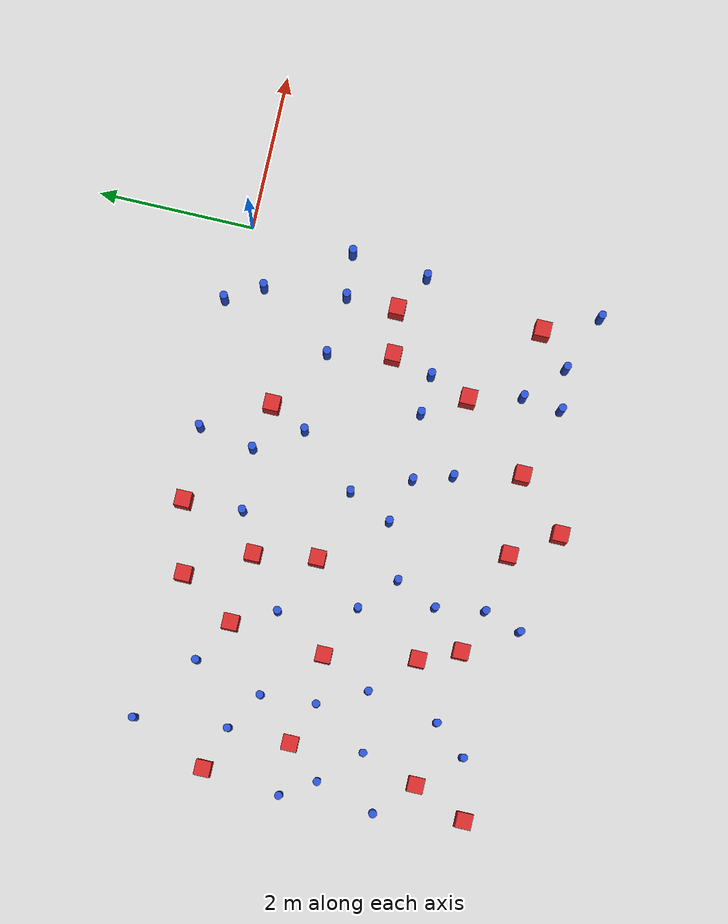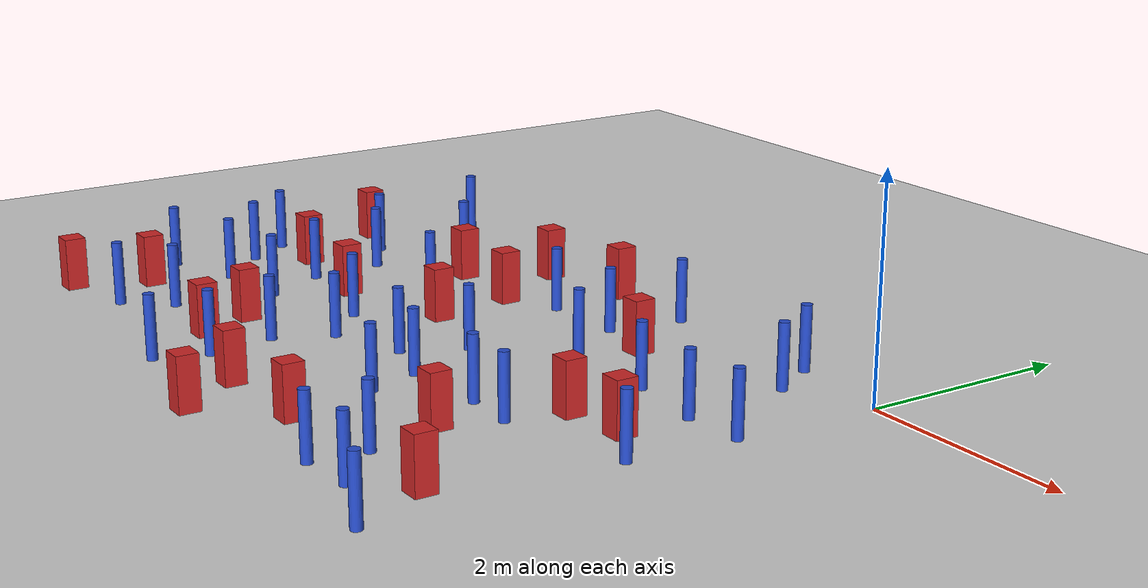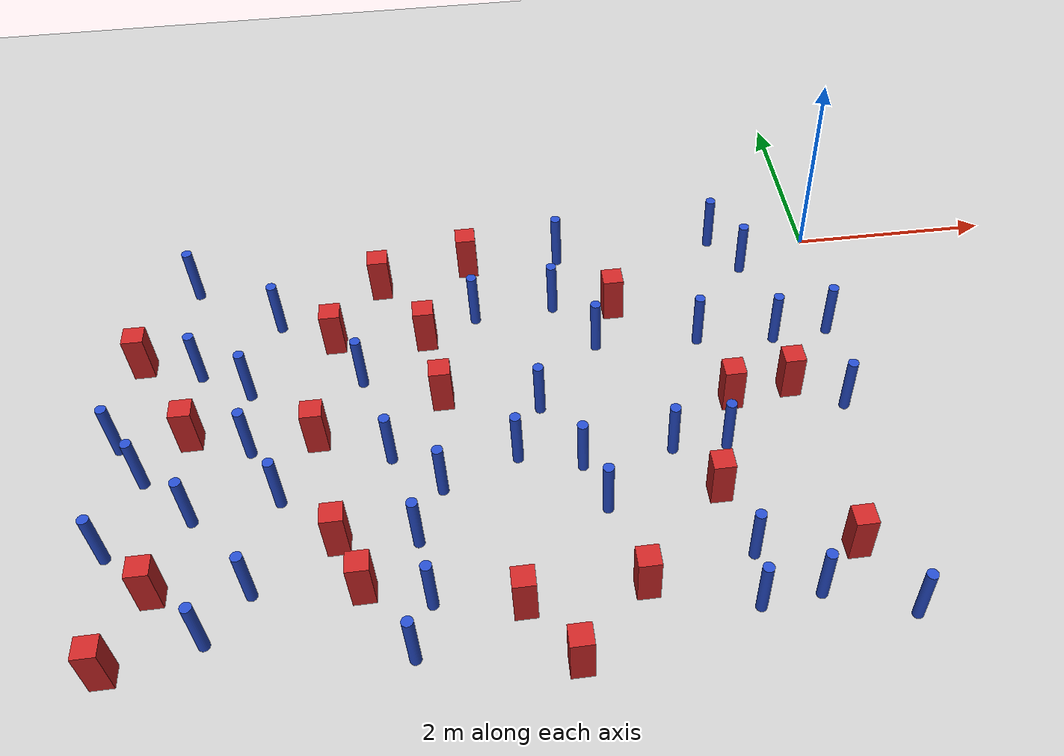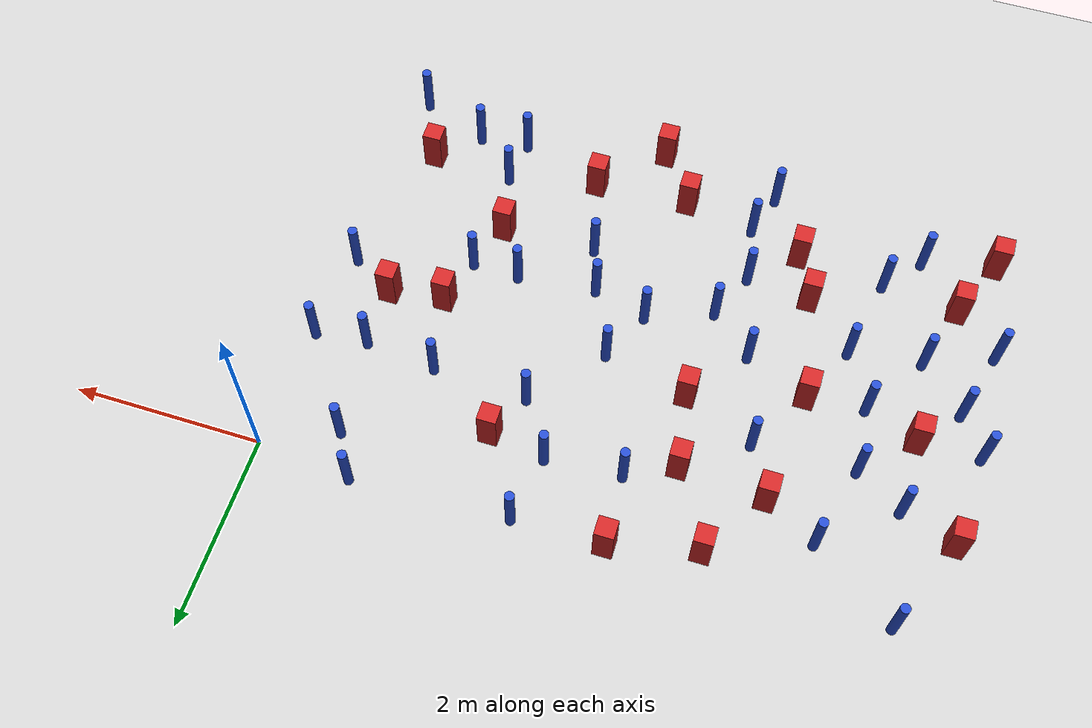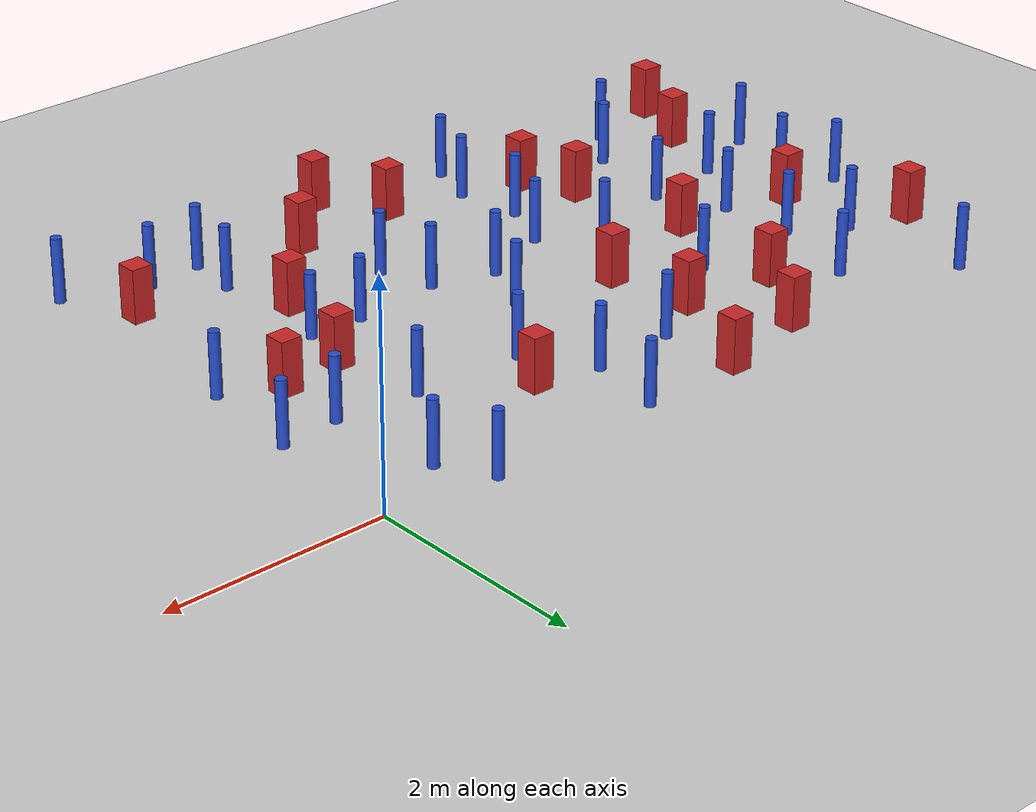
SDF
<sdf version="1.6">
 <world name="default">
  <model name="ground_plane">
   <static>1</static>
   <link name="link">
    <collision name="collision">
     <geometry><plane><normal>0 0 1</normal><size>100 100</size></plane></geometry>
     <surface><friction><ode><mu>100</mu><mu2>50</mu2></ode></friction></surface>
    </collision>
    <visual name="visual">
     <cast_shadows>0</cast_shadows>
     <geometry><plane><normal>0 0 1</normal><size>100 100</size></plane></geometry>
     <material>
      <ambient>1.0 1.0 1.0 1.0</ambient>
      <diffuse>0.8 0.8 0.8 1.0</diffuse>
      <specular>0.01 0.01 0.01 1.000000</specular>
     </material>
    </visual>
   </link>
  </model>
  <model name="square_post_obstacle3">
   <static>true</static>
   <pose>-6.72578456892 -4.25909978708 1.91545236811e-07 -7.35059704564e-06 1.12565212e-07 2.39332434364e-05</pose>
   <link name="link">
    <pose>0 0 0.25 0 -0 0</pose>
    <inertial>
     <mass>100</mass>
     <inertia>
      <ixx>0.166667</ixx>
      <ixy>0</ixy>
      <ixz>0</ixz>
      <iyy>0.166667</iyy>
      <iyz>0</iyz>
      <izz>0.166667</izz>
     </inertia>
    </inertial>
    <collision name="collision"><geometry><box><size>.2 .2 .5</size></box></geometry></collision>
    <visual name="visual">
     <geometry><box><size>.2 .2 .5</size></box></geometry>
     <material>
      <script><name>Gazebo/Red</name><uri>file://media/materials/scripts/gazebo.material</uri></script>
     </material>
    </visual>
   </link>
  </model>
  <model name="pole_obstacle2">
   <static>true</static>
   <pose>-1.40152166892 -1.29997373977 7.38925637345e-09 -8.471706928e-08 1.24976765079e-08 -1.74513093017e-07</pose>
   <link name="link">
    <pose>0 0 0.3 0 -0 0</pose>
    <inertial>
     <mass>1</mass>
     <inertia><ixx>0.145833</ixx><ixy>0</ixy><ixz>0</ixz><iyy>0.145833</iyy><iyz>0</iyz><izz>0.125</izz></inertia>
    </inertial>
    <collision name="collision">
     <geometry><cylinder><radius>0.05</radius><length>.6</length></cylinder></geometry>
    </collision>
    <visual name="visual">
     <geometry><cylinder><radius>0.05</radius><length>.6</length></cylinder></geometry>
     <material>
      <script><name>Gazebo/Blue</name><uri>file://media/materials/scripts/gazebo.material</uri></script>
     </material>
    </visual>
   </link>
  </model>
  <model name="square_post_obstacle6">
   <static>true</static>
   <pose>-2.18707667047 -0.770278562801 1.91545236811e-07 -7.35059704564e-06 1.12565212e-07 2.39332434364e-05</pose>
   <link name="link">
    <pose>0 0 0.25 0 -0 0</pose>
    <inertial>
     <mass>100</mass>
     <inertia>
      <ixx>0.166667</ixx>
      <ixy>0</ixy>
      <ixz>0</ixz>
      <iyy>0.166667</iyy>
      <iyz>0</iyz>
      <izz>0.166667</izz>
     </inertia>
    </inertial>
    <collision name="collision"><geometry><box><size>.2 .2 .5</size></box></geometry></collision>
    <visual name="visual">
     <geometry><box><size>.2 .2 .5</size></box></geometry>
     <material>
      <script><name>Gazebo/Red</name><uri>file://media/materials/scripts/gazebo.material</uri></script>
     </material>
    </visual>
   </link>
  </model>
  <model name="square_post_obstacle8">
   <static>true</static>
   <pose>-4.51516175834 -0.173714430252 1.91545236811e-07 -7.35059704564e-06 1.12565212e-07 2.39332434364e-05</pose>
   <link name="link">
    <pose>0 0 0.25 0 -0 0</pose>
    <inertial>
     <mass>100</mass>
     <inertia>
      <ixx>0.166667</ixx>
      <ixy>0</ixy>
      <ixz>0</ixz>
      <iyy>0.166667</iyy>
      <iyz>0</iyz>
      <izz>0.166667</izz>
     </inertia>
    </inertial>
    <collision name="collision"><geometry><box><size>.2 .2 .5</size></box></geometry></collision>
    <visual name="visual">
     <geometry><box><size>.2 .2 .5</size></box></geometry>
     <material>
      <script><name>Gazebo/Red</name><uri>file://media/materials/scripts/gazebo.material</uri></script>
     </material>
    </visual>
   </link>
  </model>
  <model name="pole_obstacle6">
   <static>true</static>
   <pose>-0.0801501112502 -1.33337683288 7.38925637345e-09 -8.47170692799e-08 1.24976765008e-08 -1.7451309302e-07</pose>
   <link name="link">
    <pose>0 0 0.3 0 -0 0</pose>
    <inertial>
     <mass>1</mass>
     <inertia><ixx>0.145833</ixx><ixy>0</ixy><ixz>0</ixz><iyy>0.145833</iyy><iyz>0</iyz><izz>0.125</izz></inertia>
    </inertial>
    <collision name="collision">
     <geometry><cylinder><radius>0.05</radius><length>.6</length></cylinder></geometry>
    </collision>
    <visual name="visual">
     <geometry><cylinder><radius>0.05</radius><length>.6</length></cylinder></geometry>
     <material>
      <script><name>Gazebo/Blue</name><uri>file://media/materials/scripts/gazebo.material</uri></script>
     </material>
    </visual>
   </link>
  </model>
  <model name="square_post_obstacle17">
   <static>true</static>
   <pose>-0.514656128458 -3.88882364284 1.91545236811e-07 -7.35059704564e-06 1.12565212e-07 2.39332434364e-05</pose>
   <link name="link">
    <pose>0 0 0.25 0 -0 0</pose>
    <inertial>
     <mass>100</mass>
     <inertia>
      <ixx>0.166667</ixx>
      <ixy>0</ixy>
      <ixz>0</ixz>
      <iyy>0.166667</iyy>
      <iyz>0</iyz>
      <izz>0.166667</izz>
     </inertia>
    </inertial>
    <collision name="collision"><geometry><box><size>.2 .2 .5</size></box></geometry></collision>
    <visual name="visual">
     <geometry><box><size>.2 .2 .5</size></box></geometry>
     <material>
      <script><name>Gazebo/Red</name><uri>file://media/materials/scripts/gazebo.material</uri></script>
     </material>
    </visual>
   </link>
  </model>
  <model name="pole_obstacle11">
   <static>true</static>
   <pose>-3.30508993108 -2.53764169454 7.38925637345e-09 -8.47170692798e-08 1.24976764939e-08 -1.74513093025e-07</pose>
   <link name="link">
    <pose>0 0 0.3 0 -0 0</pose>
    <inertial>
     <mass>1</mass>
     <inertia><ixx>0.145833</ixx><ixy>0</ixy><ixz>0</ixz><iyy>0.145833</iyy><iyz>0</iyz><izz>0.125</izz></inertia>
    </inertial>
    <collision name="collision">
     <geometry><cylinder><radius>0.05</radius><length>.6</length></cylinder></geometry>
    </collision>
    <visual name="visual">
     <geometry><cylinder><radius>0.05</radius><length>.6</length></cylinder></geometry>
     <material>
      <script><name>Gazebo/Blue</name><uri>file://media/materials/scripts/gazebo.material</uri></script>
     </material>
    </visual>
   </link>
  </model>
  <model name="square_post_obstacle20">
   <static>true</static>
   <pose>-4.69119235852 -3.77144085148 1.91545236811e-07 -7.35059704564e-06 1.12565212e-07 2.39332434364e-05</pose>
   <link name="link">
    <pose>0 0 0.25 0 -0 0</pose>
    <inertial>
     <mass>100</mass>
     <inertia>
      <ixx>0.166667</ixx>
      <ixy>0</ixy>
      <ixz>0</ixz>
      <iyy>0.166667</iyy>
      <iyz>0</iyz>
      <izz>0.166667</izz>
     </inertia>
    </inertial>
    <collision name="collision"><geometry><box><size>.2 .2 .5</size></box></geometry></collision>
    <visual name="visual">
     <geometry><box><size>.2 .2 .5</size></box></geometry>
     <material>
      <script><name>Gazebo/Red</name><uri>file://media/materials/scripts/gazebo.material</uri></script>
     </material>
    </visual>
   </link>
  </model>
  <model name="pole_obstacle16">
   <static>true</static>
   <pose>-6.26227761257 -1.14777854479 7.38925637345e-09 -8.471706928e-08 1.24976765134e-08 -1.74513093015e-07</pose>
   <link name="link">
    <pose>0 0 0.3 0 -0 0</pose>
    <inertial>
     <mass>1</mass>
     <inertia><ixx>0.145833</ixx><ixy>0</ixy><ixz>0</ixz><iyy>0.145833</iyy><iyz>0</iyz><izz>0.125</izz></inertia>
    </inertial>
    <collision name="collision">
     <geometry><cylinder><radius>0.05</radius><length>.6</length></cylinder></geometry>
    </collision>
    <visual name="visual">
     <geometry><cylinder><radius>0.05</radius><length>.6</length></cylinder></geometry>
     <material>
      <script><name>Gazebo/Blue</name><uri>file://media/materials/scripts/gazebo.material</uri></script>
     </material>
    </visual>
   </link>
  </model>
  <model name="square_post_obstacle24">
   <static>true</static>
   <pose>-2.35909466799 -4.04027551018 1.91545236811e-07 -7.35059704564e-06 1.12565212e-07 2.39332434364e-05</pose>
   <link name="link">
    <pose>0 0 0.25 0 -0 0</pose>
    <inertial>
     <mass>100</mass>
     <inertia>
      <ixx>0.166667</ixx>
      <ixy>0</ixy>
      <ixz>0</ixz>
      <iyy>0.166667</iyy>
      <iyz>0</iyz>
      <izz>0.166667</izz>
     </inertia>
    </inertial>
    <collision name="collision"><geometry><box><size>.2 .2 .5</size></box></geometry></collision>
    <visual name="visual">
     <geometry><box><size>.2 .2 .5</size></box></geometry>
     <material>
      <script><name>Gazebo/Red</name><uri>file://media/materials/scripts/gazebo.material</uri></script>
     </material>
    </visual>
   </link>
  </model>
  <model name="square_post_obstacle25">
   <static>true</static>
   <pose>-6.27596698479 -1.94494362061 1.91545236811e-07 -7.35059704564e-06 1.12565212e-07 2.39332434364e-05</pose>
   <link name="link">
    <pose>0 0 0.25 0 -0 0</pose>
    <inertial>
     <mass>100</mass>
     <inertia>
      <ixx>0.166667</ixx>
      <ixy>0</ixy>
      <ixz>0</ixz>
      <iyy>0.166667</iyy>
      <iyz>0</iyz>
      <izz>0.166667</izz>
     </inertia>
    </inertial>
    <collision name="collision"><geometry><box><size>.2 .2 .5</size></box></geometry></collision>
    <visual name="visual">
     <geometry><box><size>.2 .2 .5</size></box></geometry>
     <material>
      <script><name>Gazebo/Red</name><uri>file://media/materials/scripts/gazebo.material</uri></script>
     </material>
    </visual>
   </link>
  </model>
  <model name="square_post_obstacle28">
   <static>true</static>
   <pose>-1.23628763305 -2.12147902751 1.91545236811e-07 -7.35059704564e-06 1.12565212e-07 2.39332434364e-05</pose>
   <link name="link">
    <pose>0 0 0.25 0 -0 0</pose>
    <inertial>
     <mass>100</mass>
     <inertia>
      <ixx>0.166667</ixx>
      <ixy>0</ixy>
      <ixz>0</ixz>
      <iyy>0.166667</iyy>
      <iyz>0</iyz>
      <izz>0.166667</izz>
     </inertia>
    </inertial>
    <collision name="collision"><geometry><box><size>.2 .2 .5</size></box></geometry></collision>
    <visual name="visual">
     <geometry><box><size>.2 .2 .5</size></box></geometry>
     <material>
      <script><name>Gazebo/Red</name><uri>file://media/materials/scripts/gazebo.material</uri></script>
     </material>
    </visual>
   </link>
  </model>
  <model name="pole_obstacle19">
   <static>true</static>
   <pose>-5.52888162349 -0.572080167326 7.38925637345e-09 -8.47170692799e-08 1.24976765038e-08 -1.74513093018e-07</pose>
   <link name="link">
    <pose>0 0 0.3 0 -0 0</pose>
    <inertial>
     <mass>1</mass>
     <inertia><ixx>0.145833</ixx><ixy>0</ixy><ixz>0</ixz><iyy>0.145833</iyy><iyz>0</iyz><izz>0.125</izz></inertia>
    </inertial>
    <collision name="collision">
     <geometry><cylinder><radius>0.05</radius><length>.6</length></cylinder></geometry>
    </collision>
    <visual name="visual">
     <geometry><cylinder><radius>0.05</radius><length>.6</length></cylinder></geometry>
     <material>
      <script><name>Gazebo/Blue</name><uri>file://media/materials/scripts/gazebo.material</uri></script>
     </material>
    </visual>
   </link>
  </model>
  <model name="pole_obstacle20">
   <static>true</static>
   <pose>-6.89139644534 -3.13969735998 7.38925637345e-09 -8.47170692798e-08 1.24976764937e-08 -1.74513093023e-07</pose>
   <link name="link">
    <pose>0 0 0.3 0 -0 0</pose>
    <inertial>
     <mass>1</mass>
     <inertia><ixx>0.145833</ixx><ixy>0</ixy><ixz>0</ixz><iyy>0.145833</iyy><iyz>0</iyz><izz>0.125</izz></inertia>
    </inertial>
    <collision name="collision">
     <geometry><cylinder><radius>0.05</radius><length>.6</length></cylinder></geometry>
    </collision>
    <visual name="visual">
     <geometry><cylinder><radius>0.05</radius><length>.6</length></cylinder></geometry>
     <material>
      <script><name>Gazebo/Blue</name><uri>file://media/materials/scripts/gazebo.material</uri></script>
     </material>
    </visual>
   </link>
  </model>
  <model name="pole_obstacle24">
   <static>true</static>
   <pose>-6.39694442278 0.0261572030149 7.38925637345e-09 -8.47170692801e-08 1.24976765199e-08 -1.74513093011e-07</pose>
   <link name="link">
    <pose>0 0 0.3 0 -0 0</pose>
    <inertial>
     <mass>1</mass>
     <inertia><ixx>0.145833</ixx><ixy>0</ixy><ixz>0</ixz><iyy>0.145833</iyy><iyz>0</iyz><izz>0.125</izz></inertia>
    </inertial>
    <collision name="collision">
     <geometry><cylinder><radius>0.05</radius><length>.6</length></cylinder></geometry>
    </collision>
    <visual name="visual">
     <geometry><cylinder><radius>0.05</radius><length>.6</length></cylinder></geometry>
     <material>
      <script><name>Gazebo/Blue</name><uri>file://media/materials/scripts/gazebo.material</uri></script>
     </material>
    </visual>
   </link>
  </model>
  <model name="square_post_obstacle47">
   <static>true</static>
   <pose>-6.81778217009 -0.961645913509 1.91545236811e-07 -7.35059704564e-06 1.12565212e-07 2.39332434364e-05</pose>
   <link name="link">
    <pose>0 0 0.25 0 -0 0</pose>
    <inertial>
     <mass>100</mass>
     <inertia>
      <ixx>0.166667</ixx>
      <ixy>0</ixy>
      <ixz>0</ixz>
      <iyy>0.166667</iyy>
      <iyz>0</iyz>
      <izz>0.166667</izz>
     </inertia>
    </inertial>
    <collision name="collision"><geometry><box><size>.2 .2 .5</size></box></geometry></collision>
    <visual name="visual">
     <geometry><box><size>.2 .2 .5</size></box></geometry>
     <material>
      <script><name>Gazebo/Red</name><uri>file://media/materials/scripts/gazebo.material</uri></script>
     </material>
    </visual>
   </link>
  </model>
  <model name="pole_obstacle49">
   <static>true</static>
   <pose>-4.22984772622 -3.3323636457 7.38925637345e-09 -8.47170692798e-08 1.24976764937e-08 -1.74513093023e-07</pose>
   <link name="link">
    <pose>0 0 0.3 0 -0 0</pose>
    <inertial>
     <mass>1</mass>
     <inertia><ixx>0.145833</ixx><ixy>0</ixy><ixz>0</ixz><iyy>0.145833</iyy><iyz>0</iyz><izz>0.125</izz></inertia>
    </inertial>
    <collision name="collision">
     <geometry><cylinder><radius>0.05</radius><length>.6</length></cylinder></geometry>
    </collision>
    <visual name="visual">
     <geometry><cylinder><radius>0.05</radius><length>.6</length></cylinder></geometry>
     <material>
      <script><name>Gazebo/Blue</name><uri>file://media/materials/scripts/gazebo.material</uri></script>
     </material>
    </visual>
   </link>
  </model>
  <model name="pole_obstacle52">
   <static>true</static>
   <pose>-5.7286179228 -2.15368351549 7.38925637345e-09 -8.47170692798e-08 1.24976764937e-08 -1.74513093023e-07</pose>
   <link name="link">
    <pose>0 0 0.3 0 -0 0</pose>
    <inertial>
     <mass>1</mass>
     <inertia><ixx>0.145833</ixx><ixy>0</ixy><ixz>0</ixz><iyy>0.145833</iyy><iyz>0</iyz><izz>0.125</izz></inertia>
    </inertial>
    <collision name="collision">
     <geometry><cylinder><radius>0.05</radius><length>.6</length></cylinder></geometry>
    </collision>
    <visual name="visual">
     <geometry><cylinder><radius>0.05</radius><length>.6</length></cylinder></geometry>
     <material>
      <script><name>Gazebo/Blue</name><uri>file://media/materials/scripts/gazebo.material</uri></script>
     </material>
    </visual>
   </link>
  </model>
  <model name="pole_obstacle60">
   <static>true</static>
   <pose>-2.56644233786 -3.19795613906 7.38925637345e-09 -8.47170692798e-08 1.24976764939e-08 -1.74513093025e-07</pose>
   <link name="link">
    <pose>0 0 0.3 0 -0 0</pose>
    <inertial>
     <mass>1</mass>
     <inertia><ixx>0.145833</ixx><ixy>0</ixy><ixz>0</ixz><iyy>0.145833</iyy><iyz>0</iyz><izz>0.125</izz></inertia>
    </inertial>
    <collision name="collision">
     <geometry><cylinder><radius>0.05</radius><length>.6</length></cylinder></geometry>
    </collision>
    <visual name="visual">
     <geometry><cylinder><radius>0.05</radius><length>.6</length></cylinder></geometry>
     <material>
      <script><name>Gazebo/Blue</name><uri>file://media/materials/scripts/gazebo.material</uri></script>
     </material>
    </visual>
   </link>
  </model>
  <model name="pole_obstacle68">
   <static>true</static>
   <pose>-2.41719164136 -1.24448720635 7.38925637345e-09 -8.471706928e-08 1.24976765152e-08 -1.74513093012e-07</pose>
   <link name="link">
    <pose>0 0 0.3 0 -0 0</pose>
    <inertial>
     <mass>1</mass>
     <inertia><ixx>0.145833</ixx><ixy>0</ixy><ixz>0</ixz><iyy>0.145833</iyy><iyz>0</iyz><izz>0.125</izz></inertia>
    </inertial>
    <collision name="collision">
     <geometry><cylinder><radius>0.05</radius><length>.6</length></cylinder></geometry>
    </collision>
    <visual name="visual">
     <geometry><cylinder><radius>0.05</radius><length>.6</length></cylinder></geometry>
     <material>
      <script><name>Gazebo/Blue</name><uri>file://media/materials/scripts/gazebo.material</uri></script>
     </material>
    </visual>
   </link>
  </model>
  <model name="pole_obstacle69">
   <static>true</static>
   <pose>-6.19016517694 -2.85698270491 7.38925637345e-09 -8.47170692798e-08 1.24976764937e-08 -1.74513093023e-07</pose>
   <link name="link">
    <pose>0 0 0.3 0 -0 0</pose>
    <inertial>
     <mass>1</mass>
     <inertia><ixx>0.145833</ixx><ixy>0</ixy><ixz>0</ixz><iyy>0.145833</iyy><iyz>0</iyz><izz>0.125</izz></inertia>
    </inertial>
    <collision name="collision">
     <geometry><cylinder><radius>0.05</radius><length>.6</length></cylinder></geometry>
    </collision>
    <visual name="visual">
     <geometry><cylinder><radius>0.05</radius><length>.6</length></cylinder></geometry>
     <material>
      <script><name>Gazebo/Blue</name><uri>file://media/materials/scripts/gazebo.material</uri></script>
     </material>
    </visual>
   </link>
  </model>
  <model name="pole_obstacle83">
   <static>true</static>
   <pose>-5.7751702484 -1.44829216469 7.38925637345e-09 -8.471706928e-08 1.24976765134e-08 -1.74513093015e-07</pose>
   <link name="link">
    <pose>0 0 0.3 0 -0 0</pose>
    <inertial>
     <mass>1</mass>
     <inertia><ixx>0.145833</ixx><ixy>0</ixy><ixz>0</ixz><iyy>0.145833</iyy><iyz>0</iyz><izz>0.125</izz></inertia>
    </inertial>
    <collision name="collision">
     <geometry><cylinder><radius>0.05</radius><length>.6</length></cylinder></geometry>
    </collision>
    <visual name="visual">
     <geometry><cylinder><radius>0.05</radius><length>.6</length></cylinder></geometry>
     <material>
      <script><name>Gazebo/Blue</name><uri>file://media/materials/scripts/gazebo.material</uri></script>
     </material>
    </visual>
   </link>
  </model>
  <model name="pole_obstacle96">
   <static>true</static>
   <pose>-1.39470637935 -3.83533578736 7.38925637345e-09 -8.47170692799e-08 1.24976765053e-08 -1.74513093017e-07</pose>
   <link name="link">
    <pose>0 0 0.3 0 -0 0</pose>
    <inertial>
     <mass>1</mass>
     <inertia><ixx>0.145833</ixx><ixy>0</ixy><ixz>0</ixz><iyy>0.145833</iyy><iyz>0</iyz><izz>0.125</izz></inertia>
    </inertial>
    <collision name="collision">
     <geometry><cylinder><radius>0.05</radius><length>.6</length></cylinder></geometry>
    </collision>
    <visual name="visual">
     <geometry><cylinder><radius>0.05</radius><length>.6</length></cylinder></geometry>
     <material>
      <script><name>Gazebo/Blue</name><uri>file://media/materials/scripts/gazebo.material</uri></script>
     </material>
    </visual>
   </link>
  </model>
  <model name="square_post_obstacle96">
   <static>true</static>
   <pose>-3.3791587954 -4.09292487905 1.91545236811e-07 -7.35059704564e-06 1.12565212e-07 2.39332434364e-05</pose>
   <link name="link">
    <pose>0 0 0.25 0 -0 0</pose>
    <inertial>
     <mass>100</mass>
     <inertia>
      <ixx>0.166667</ixx>
      <ixy>0</ixy>
      <ixz>0</ixz>
      <iyy>0.166667</iyy>
      <iyz>0</iyz>
      <izz>0.166667</izz>
     </inertia>
    </inertial>
    <collision name="collision"><geometry><box><size>.2 .2 .5</size></box></geometry></collision>
    <visual name="visual">
     <geometry><box><size>.2 .2 .5</size></box></geometry>
     <material>
      <script><name>Gazebo/Red</name><uri>file://media/materials/scripts/gazebo.material</uri></script>
     </material>
    </visual>
   </link>
  </model>
  <model name="pole_obstacle111">
   <static>true</static>
   <pose>-4.28963346825 -4.43289529993 7.38925637345e-09 -8.47170692796e-08 1.24976764786e-08 -1.74513093032e-07</pose>
   <link name="link">
    <pose>0 0 0.3 0 -0 0</pose>
    <inertial>
     <mass>1</mass>
     <inertia><ixx>0.145833</ixx><ixy>0</ixy><ixz>0</ixz><iyy>0.145833</iyy><iyz>0</iyz><izz>0.125</izz></inertia>
    </inertial>
    <collision name="collision">
     <geometry><cylinder><radius>0.05</radius><length>.6</length></cylinder></geometry>
    </collision>
    <visual name="visual">
     <geometry><cylinder><radius>0.05</radius><length>.6</length></cylinder></geometry>
     <material>
      <script><name>Gazebo/Blue</name><uri>file://media/materials/scripts/gazebo.material</uri></script>
     </material>
    </visual>
   </link>
  </model>
  <model name="pole_obstacle115">
   <static>true</static>
   <pose>-1.01069509253 0.122563615605 7.38925637345e-09 -8.47170692799e-08 1.24976765002e-08 -1.74513093022e-07</pose>
   <link name="link">
    <pose>0 0 0.3 0 -0 0</pose>
    <inertial>
     <mass>1</mass>
     <inertia><ixx>0.145833</ixx><ixy>0</ixy><ixz>0</ixz><iyy>0.145833</iyy><iyz>0</iyz><izz>0.125</izz></inertia>
    </inertial>
    <collision name="collision">
     <geometry><cylinder><radius>0.05</radius><length>.6</length></cylinder></geometry>
    </collision>
    <visual name="visual">
     <geometry><cylinder><radius>0.05</radius><length>.6</length></cylinder></geometry>
     <material>
      <script><name>Gazebo/Blue</name><uri>file://media/materials/scripts/gazebo.material</uri></script>
     </material>
    </visual>
   </link>
  </model>
  <model name="pole_obstacle117">
   <static>true</static>
   <pose>-3.04638582311 -1.97978961637 7.38925637345e-09 -8.471706928e-08 1.249767651e-08 -1.74513093015e-07</pose>
   <link name="link">
    <pose>0 0 0.3 0 -0 0</pose>
    <inertial>
     <mass>1</mass>
     <inertia><ixx>0.145833</ixx><ixy>0</ixy><ixz>0</ixz><iyy>0.145833</iyy><iyz>0</iyz><izz>0.125</izz></inertia>
    </inertial>
    <collision name="collision">
     <geometry><cylinder><radius>0.05</radius><length>.6</length></cylinder></geometry>
    </collision>
    <visual name="visual">
     <geometry><cylinder><radius>0.05</radius><length>.6</length></cylinder></geometry>
     <material>
      <script><name>Gazebo/Blue</name><uri>file://media/materials/scripts/gazebo.material</uri></script>
     </material>
    </visual>
   </link>
  </model>
  <model name="square_post_obstacle105">
   <static>true</static>
   <pose>-5.11487930337 -2.10931228977 1.91545236811e-07 -7.35059704564e-06 1.12565212e-07 2.39332434364e-05</pose>
   <link name="link">
    <pose>0 0 0.25 0 -0 0</pose>
    <inertial>
     <mass>100</mass>
     <inertia>
      <ixx>0.166667</ixx>
      <ixy>0</ixy>
      <ixz>0</ixz>
      <iyy>0.166667</iyy>
      <iyz>0</iyz>
      <izz>0.166667</izz>
     </inertia>
    </inertial>
    <collision name="collision"><geometry><box><size>.2 .2 .5</size></box></geometry></collision>
    <visual name="visual">
     <geometry><box><size>.2 .2 .5</size></box></geometry>
     <material>
      <script><name>Gazebo/Red</name><uri>file://media/materials/scripts/gazebo.material</uri></script>
     </material>
    </visual>
   </link>
  </model>
  <model name="pole_obstacle122">
   <static>true</static>
   <pose>-0.639288791873 -1.3812533469 7.38925637345e-09 -8.47170692799e-08 1.24976765033e-08 -1.7451309302e-07</pose>
   <link name="link">
    <pose>0 0 0.3 0 -0 0</pose>
    <inertial>
     <mass>1</mass>
     <inertia><ixx>0.145833</ixx><ixy>0</ixy><ixz>0</ixz><iyy>0.145833</iyy><iyz>0</iyz><izz>0.125</izz></inertia>
    </inertial>
    <collision name="collision">
     <geometry><cylinder><radius>0.05</radius><length>.6</length></cylinder></geometry>
    </collision>
    <visual name="visual">
     <geometry><cylinder><radius>0.05</radius><length>.6</length></cylinder></geometry>
     <material>
      <script><name>Gazebo/Blue</name><uri>file://media/materials/scripts/gazebo.material</uri></script>
     </material>
    </visual>
   </link>
  </model>
  <model name="pole_obstacle123">
   <static>true</static>
   <pose>-5.97156620751 -4.08249551544 7.38925637345e-09 -8.47170692796e-08 1.24976764786e-08 -1.74513093032e-07</pose>
   <link name="link">
    <pose>0 0 0.3 0 -0 0</pose>
    <inertial>
     <mass>1</mass>
     <inertia><ixx>0.145833</ixx><ixy>0</ixy><ixz>0</ixz><iyy>0.145833</iyy><iyz>0</iyz><izz>0.125</izz></inertia>
    </inertial>
    <collision name="collision">
     <geometry><cylinder><radius>0.05</radius><length>.6</length></cylinder></geometry>
    </collision>
    <visual name="visual">
     <geometry><cylinder><radius>0.05</radius><length>.6</length></cylinder></geometry>
     <material>
      <script><name>Gazebo/Blue</name><uri>file://media/materials/scripts/gazebo.material</uri></script>
     </material>
    </visual>
   </link>
  </model>
  <model name="pole_obstacle127">
   <static>true</static>
   <pose>-4.7113660434 -1.42481449206 7.38925637345e-09 -8.471706928e-08 1.24976765134e-08 -1.74513093015e-07</pose>
   <link name="link">
    <pose>0 0 0.3 0 -0 0</pose>
    <inertial>
     <mass>1</mass>
     <inertia><ixx>0.145833</ixx><ixy>0</ixy><ixz>0</ixz><iyy>0.145833</iyy><iyz>0</iyz><izz>0.125</izz></inertia>
    </inertial>
    <collision name="collision">
     <geometry><cylinder><radius>0.05</radius><length>.6</length></cylinder></geometry>
    </collision>
    <visual name="visual">
     <geometry><cylinder><radius>0.05</radius><length>.6</length></cylinder></geometry>
     <material>
      <script><name>Gazebo/Blue</name><uri>file://media/materials/scripts/gazebo.material</uri></script>
     </material>
    </visual>
   </link>
  </model>
  <model name="pole_obstacle128">
   <static>true</static>
   <pose>-1.88518282944 -2.62590019886 7.38925637345e-09 -8.47170692799e-08 1.24976765053e-08 -1.74513093017e-07</pose>
   <link name="link">
    <pose>0 0 0.3 0 -0 0</pose>
    <inertial>
     <mass>1</mass>
     <inertia><ixx>0.145833</ixx><ixy>0</ixy><ixz>0</ixz><iyy>0.145833</iyy><iyz>0</iyz><izz>0.125</izz></inertia>
    </inertial>
    <collision name="collision">
     <geometry><cylinder><radius>0.05</radius><length>.6</length></cylinder></geometry>
    </collision>
    <visual name="visual">
     <geometry><cylinder><radius>0.05</radius><length>.6</length></cylinder></geometry>
     <material>
      <script><name>Gazebo/Blue</name><uri>file://media/materials/scripts/gazebo.material</uri></script>
     </material>
    </visual>
   </link>
  </model>
  <model name="square_post_obstacle118">
   <static>true</static>
   <pose>-3.61276076669 0.0403109899677 1.91545236811e-07 -7.35059704564e-06 1.12565212e-07 2.39332434364e-05</pose>
   <link name="link">
    <pose>0 0 0.25 0 -0 0</pose>
    <inertial>
     <mass>100</mass>
     <inertia>
      <ixx>0.166667</ixx>
      <ixy>0</ixy>
      <ixz>0</ixz>
      <iyy>0.166667</iyy>
      <iyz>0</iyz>
      <izz>0.166667</izz>
     </inertia>
    </inertial>
    <collision name="collision"><geometry><box><size>.2 .2 .5</size></box></geometry></collision>
    <visual name="visual">
     <geometry><box><size>.2 .2 .5</size></box></geometry>
     <material>
      <script><name>Gazebo/Red</name><uri>file://media/materials/scripts/gazebo.material</uri></script>
     </material>
    </visual>
   </link>
  </model>
  <model name="square_post_obstacle139">
   <static>true</static>
   <pose>-2.98747233355 -4.6648887035 1.91545236811e-07 -7.35059704564e-06 1.12565212e-07 2.39332434364e-05</pose>
   <link name="link">
    <pose>0 0 0.25 0 -0 0</pose>
    <inertial>
     <mass>100</mass>
     <inertia>
      <ixx>0.166667</ixx>
      <ixy>0</ixy>
      <ixz>0</ixz>
      <iyy>0.166667</iyy>
      <iyz>0</iyz>
      <izz>0.166667</izz>
     </inertia>
    </inertial>
    <collision name="collision"><geometry><box><size>.2 .2 .5</size></box></geometry></collision>
    <visual name="visual">
     <geometry><box><size>.2 .2 .5</size></box></geometry>
     <material>
      <script><name>Gazebo/Red</name><uri>file://media/materials/scripts/gazebo.material</uri></script>
     </material>
    </visual>
   </link>
  </model>
  <model name="square_post_obstacle140">
   <static>true</static>
   <pose>-1.56179422176 -3.16438572719 1.91545236811e-07 -7.35059704564e-06 1.12565212e-07 2.39332434364e-05</pose>
   <link name="link">
    <pose>0 0 0.25 0 -0 0</pose>
    <inertial>
     <mass>100</mass>
     <inertia>
      <ixx>0.166667</ixx>
      <ixy>0</ixy>
      <ixz>0</ixz>
      <iyy>0.166667</iyy>
      <iyz>0</iyz>
      <izz>0.166667</izz>
     </inertia>
    </inertial>
    <collision name="collision"><geometry><box><size>.2 .2 .5</size></box></geometry></collision>
    <visual name="visual">
     <geometry><box><size>.2 .2 .5</size></box></geometry>
     <material>
      <script><name>Gazebo/Red</name><uri>file://media/materials/scripts/gazebo.material</uri></script>
     </material>
    </visual>
   </link>
  </model>
  <model name="pole_obstacle150">
   <static>true</static>
   <pose>-1.4522011831 -4.33743160439 7.38925637345e-09 -8.47170692799e-08 1.24976765033e-08 -1.74513093018e-07</pose>
   <link name="link">
    <pose>0 0 0.3 0 -0 0</pose>
    <inertial>
     <mass>1</mass>
     <inertia><ixx>0.145833</ixx><ixy>0</ixy><ixz>0</ixz><iyy>0.145833</iyy><iyz>0</iyz><izz>0.125</izz></inertia>
    </inertial>
    <collision name="collision">
     <geometry><cylinder><radius>0.05</radius><length>.6</length></cylinder></geometry>
    </collision>
    <visual name="visual">
     <geometry><cylinder><radius>0.05</radius><length>.6</length></cylinder></geometry>
     <material>
      <script><name>Gazebo/Blue</name><uri>file://media/materials/scripts/gazebo.material</uri></script>
     </material>
    </visual>
   </link>
  </model>
  <model name="pole_obstacle151">
   <static>true</static>
   <pose>-5.42992772742 -2.75170162017 7.38925637345e-09 -8.47170692798e-08 1.24976764937e-08 -1.74513093023e-07</pose>
   <link name="link">
    <pose>0 0 0.3 0 -0 0</pose>
    <inertial>
     <mass>1</mass>
     <inertia><ixx>0.145833</ixx><ixy>0</ixy><ixz>0</ixz><iyy>0.145833</iyy><iyz>0</iyz><izz>0.125</izz></inertia>
    </inertial>
    <collision name="collision">
     <geometry><cylinder><radius>0.05</radius><length>.6</length></cylinder></geometry>
    </collision>
    <visual name="visual">
     <geometry><cylinder><radius>0.05</radius><length>.6</length></cylinder></geometry>
     <material>
      <script><name>Gazebo/Blue</name><uri>file://media/materials/scripts/gazebo.material</uri></script>
     </material>
    </visual>
   </link>
  </model>
  <model name="pole_obstacle158">
   <static>true</static>
   <pose>-4.44938412965 -2.39545902277 7.38925637345e-09 -8.47170692798e-08 1.24976764937e-08 -1.74513093023e-07</pose>
   <link name="link">
    <pose>0 0 0.3 0 -0 0</pose>
    <inertial>
     <mass>1</mass>
     <inertia><ixx>0.145833</ixx><ixy>0</ixy><ixz>0</ixz><iyy>0.145833</iyy><iyz>0</iyz><izz>0.125</izz></inertia>
    </inertial>
    <collision name="collision">
     <geometry><cylinder><radius>0.05</radius><length>.6</length></cylinder></geometry>
    </collision>
    <visual name="visual">
     <geometry><cylinder><radius>0.05</radius><length>.6</length></cylinder></geometry>
     <material>
      <script><name>Gazebo/Blue</name><uri>file://media/materials/scripts/gazebo.material</uri></script>
     </material>
    </visual>
   </link>
  </model>
  <model name="pole_obstacle161">
   <static>true</static>
   <pose>-2.78543756191 -0.656814462917 7.38925637345e-09 -8.471706928e-08 1.24976765177e-08 -1.74513093012e-07</pose>
   <link name="link">
    <pose>0 0 0.3 0 -0 0</pose>
    <inertial>
     <mass>1</mass>
     <inertia><ixx>0.145833</ixx><ixy>0</ixy><ixz>0</ixz><iyy>0.145833</iyy><iyz>0</iyz><izz>0.125</izz></inertia>
    </inertial>
    <collision name="collision">
     <geometry><cylinder><radius>0.05</radius><length>.6</length></cylinder></geometry>
    </collision>
    <visual name="visual">
     <geometry><cylinder><radius>0.05</radius><length>.6</length></cylinder></geometry>
     <material>
      <script><name>Gazebo/Blue</name><uri>file://media/materials/scripts/gazebo.material</uri></script>
     </material>
    </visual>
   </link>
  </model>
  <model name="pole_obstacle164">
   <static>true</static>
   <pose>-0.171554346047 -2.31933377635 7.38925637345e-09 -8.47170692792e-08 1.24976764377e-08 -1.74513093042e-07</pose>
   <link name="link">
    <pose>0 0 0.3 0 -0 0</pose>
    <inertial>
     <mass>1</mass>
     <inertia><ixx>0.145833</ixx><ixy>0</ixy><ixz>0</ixz><iyy>0.145833</iyy><iyz>0</iyz><izz>0.125</izz></inertia>
    </inertial>
    <collision name="collision">
     <geometry><cylinder><radius>0.05</radius><length>.6</length></cylinder></geometry>
    </collision>
    <visual name="visual">
     <geometry><cylinder><radius>0.05</radius><length>.6</length></cylinder></geometry>
     <material>
      <script><name>Gazebo/Blue</name><uri>file://media/materials/scripts/gazebo.material</uri></script>
     </material>
    </visual>
   </link>
  </model>
  <model name="pole_obstacle166">
   <static>true</static>
   <pose>-0.923536942347 -4.28521087243 7.38925637345e-09 -8.471706928e-08 1.24976765086e-08 -1.74513093015e-07</pose>
   <link name="link">
    <pose>0 0 0.3 0 -0 0</pose>
    <inertial>
     <mass>1</mass>
     <inertia><ixx>0.145833</ixx><ixy>0</ixy><ixz>0</ixz><iyy>0.145833</iyy><iyz>0</iyz><izz>0.125</izz></inertia>
    </inertial>
    <collision name="collision">
     <geometry><cylinder><radius>0.05</radius><length>.6</length></cylinder></geometry>
    </collision>
    <visual name="visual">
     <geometry><cylinder><radius>0.05</radius><length>.6</length></cylinder></geometry>
     <material>
      <script><name>Gazebo/Blue</name><uri>file://media/materials/scripts/gazebo.material</uri></script>
     </material>
    </visual>
   </link>
  </model>
  <model name="pole_obstacle172">
   <static>true</static>
   <pose>-0.192052159599 -4.57338779234 7.38925637345e-09 -8.47170692799e-08 1.24976765068e-08 -1.74513093018e-07</pose>
   <link name="link">
    <pose>0 0 0.3 0 -0 0</pose>
    <inertial>
     <mass>1</mass>
     <inertia><ixx>0.145833</ixx><ixy>0</ixy><ixz>0</ixz><iyy>0.145833</iyy><iyz>0</iyz><izz>0.125</izz></inertia>
    </inertial>
    <collision name="collision">
     <geometry><cylinder><radius>0.05</radius><length>.6</length></cylinder></geometry>
    </collision>
    <visual name="visual">
     <geometry><cylinder><radius>0.05</radius><length>.6</length></cylinder></geometry>
     <material>
      <script><name>Gazebo/Blue</name><uri>file://media/materials/scripts/gazebo.material</uri></script>
     </material>
    </visual>
   </link>
  </model>
  <model name="square_post_obstacle164">
   <static>true</static>
   <pose>-4.90776218397 -3.26503802907 1.91545236811e-07 -7.35059704564e-06 1.12565212e-07 2.39332434364e-05</pose>
   <link name="link">
    <pose>0 0 0.25 0 -0 0</pose>
    <inertial>
     <mass>100</mass>
     <inertia>
      <ixx>0.166667</ixx>
      <ixy>0</ixy>
      <ixz>0</ixz>
      <iyy>0.166667</iyy>
      <iyz>0</iyz>
      <izz>0.166667</izz>
     </inertia>
    </inertial>
    <collision name="collision"><geometry><box><size>.2 .2 .5</size></box></geometry></collision>
    <visual name="visual">
     <geometry><box><size>.2 .2 .5</size></box></geometry>
     <material>
      <script><name>Gazebo/Red</name><uri>file://media/materials/scripts/gazebo.material</uri></script>
     </material>
    </visual>
   </link>
  </model>
  <model name="pole_obstacle185">
   <static>true</static>
   <pose>-5.62365988838 -3.66971927835 7.38925637345e-09 -8.47170692798e-08 1.24976764937e-08 -1.74513093023e-07</pose>
   <link name="link">
    <pose>0 0 0.3 0 -0 0</pose>
    <inertial>
     <mass>1</mass>
     <inertia><ixx>0.145833</ixx><ixy>0</ixy><ixz>0</ixz><iyy>0.145833</iyy><iyz>0</iyz><izz>0.125</izz></inertia>
    </inertial>
    <collision name="collision">
     <geometry><cylinder><radius>0.05</radius><length>.6</length></cylinder></geometry>
    </collision>
    <visual name="visual">
     <geometry><cylinder><radius>0.05</radius><length>.6</length></cylinder></geometry>
     <material>
      <script><name>Gazebo/Blue</name><uri>file://media/materials/scripts/gazebo.material</uri></script>
     </material>
    </visual>
   </link>
  </model>
  <model name="pole_obstacle192">
   <static>true</static>
   <pose>-6.9321454691 -1.95569061079 7.38925637345e-09 -8.47170692801e-08 1.24976765219e-08 -1.74513093009e-07</pose>
   <link name="link">
    <pose>0 0 0.3 0 -0 0</pose>
    <inertial>
     <mass>1</mass>
     <inertia><ixx>0.145833</ixx><ixy>0</ixy><ixz>0</ixz><iyy>0.145833</iyy><iyz>0</iyz><izz>0.125</izz></inertia>
    </inertial>
    <collision name="collision">
     <geometry><cylinder><radius>0.05</radius><length>.6</length></cylinder></geometry>
    </collision>
    <visual name="visual">
     <geometry><cylinder><radius>0.05</radius><length>.6</length></cylinder></geometry>
     <material>
      <script><name>Gazebo/Blue</name><uri>file://media/materials/scripts/gazebo.material</uri></script>
     </material>
    </visual>
   </link>
  </model>
  <model name="pole_obstacle194">
   <static>true</static>
   <pose>-4.00003905738 -2.80724202825 7.38925637345e-09 -8.47170692798e-08 1.24976764953e-08 -1.74513093023e-07</pose>
   <link name="link">
    <pose>0 0 0.3 0 -0 0</pose>
    <inertial>
     <mass>1</mass>
     <inertia><ixx>0.145833</ixx><ixy>0</ixy><ixz>0</ixz><iyy>0.145833</iyy><iyz>0</iyz><izz>0.125</izz></inertia>
    </inertial>
    <collision name="collision">
     <geometry><cylinder><radius>0.05</radius><length>.6</length></cylinder></geometry>
    </collision>
    <visual name="visual">
     <geometry><cylinder><radius>0.05</radius><length>.6</length></cylinder></geometry>
     <material>
      <script><name>Gazebo/Blue</name><uri>file://media/materials/scripts/gazebo.material</uri></script>
     </material>
    </visual>
   </link>
  </model>
  <model name="pole_obstacle195">
   <static>true</static>
   <pose>-3.58189346593 -0.712780867667 7.38925637345e-09 -8.471706928e-08 1.24976765177e-08 -1.74513093012e-07</pose>
   <link name="link">
    <pose>0 0 0.3 0 -0 0</pose>
    <inertial>
     <mass>1</mass>
     <inertia><ixx>0.145833</ixx><ixy>0</ixy><ixz>0</ixz><iyy>0.145833</iyy><iyz>0</iyz><izz>0.125</izz></inertia>
    </inertial>
    <collision name="collision">
     <geometry><cylinder><radius>0.05</radius><length>.6</length></cylinder></geometry>
    </collision>
    <visual name="visual">
     <geometry><cylinder><radius>0.05</radius><length>.6</length></cylinder></geometry>
     <material>
      <script><name>Gazebo/Blue</name><uri>file://media/materials/scripts/gazebo.material</uri></script>
     </material>
    </visual>
   </link>
  </model>
  <model name="pole_obstacle196">
   <static>true</static>
   <pose>-2.72639693087 -2.70791489912 7.38925637345e-09 -8.47170692798e-08 1.24976764939e-08 -1.74513093025e-07</pose>
   <link name="link">
    <pose>0 0 0.3 0 -0 0</pose>
    <inertial>
     <mass>1</mass>
     <inertia><ixx>0.145833</ixx><ixy>0</ixy><ixz>0</ixz><iyy>0.145833</iyy><iyz>0</iyz><izz>0.125</izz></inertia>
    </inertial>
    <collision name="collision">
     <geometry><cylinder><radius>0.05</radius><length>.6</length></cylinder></geometry>
    </collision>
    <visual name="visual">
     <geometry><cylinder><radius>0.05</radius><length>.6</length></cylinder></geometry>
     <material>
      <script><name>Gazebo/Blue</name><uri>file://media/materials/scripts/gazebo.material</uri></script>
     </material>
    </visual>
   </link>
  </model>
  <model name="pole_obstacle203">
   <static>true</static>
   <pose>-0.752637186605 -0.331755891309 7.38925637345e-09 -8.471706928e-08 1.24976765108e-08 -1.74513093015e-07</pose>
   <link name="link">
    <pose>0 0 0.3 0 -0 0</pose>
    <inertial>
     <mass>1</mass>
     <inertia><ixx>0.145833</ixx><ixy>0</ixy><ixz>0</ixz><iyy>0.145833</iyy><iyz>0</iyz><izz>0.125</izz></inertia>
    </inertial>
    <collision name="collision">
     <geometry><cylinder><radius>0.05</radius><length>.6</length></cylinder></geometry>
    </collision>
    <visual name="visual">
     <geometry><cylinder><radius>0.05</radius><length>.6</length></cylinder></geometry>
     <material>
      <script><name>Gazebo/Blue</name><uri>file://media/materials/scripts/gazebo.material</uri></script>
     </material>
    </visual>
   </link>
  </model>
  <model name="pole_obstacle212">
   <static>true</static>
   <pose>-6.6609379576 -2.37858240849 7.38925637345e-09 -8.47170692798e-08 1.24976764937e-08 -1.74513093023e-07</pose>
   <link name="link">
    <pose>0 0 0.3 0 -0 0</pose>
    <inertial>
     <mass>1</mass>
     <inertia><ixx>0.145833</ixx><ixy>0</ixy><ixz>0</ixz><iyy>0.145833</iyy><iyz>0</iyz><izz>0.125</izz></inertia>
    </inertial>
    <collision name="collision">
     <geometry><cylinder><radius>0.05</radius><length>.6</length></cylinder></geometry>
    </collision>
    <visual name="visual">
     <geometry><cylinder><radius>0.05</radius><length>.6</length></cylinder></geometry>
     <material>
      <script><name>Gazebo/Blue</name><uri>file://media/materials/scripts/gazebo.material</uri></script>
     </material>
    </visual>
   </link>
  </model>
  <model name="pole_obstacle215">
   <static>true</static>
   <pose>-2.66593947442 0.0525895039489 7.38925637345e-09 -8.47170692793e-08 1.2497676446e-08 -1.74513093039e-07</pose>
   <link name="link">
    <pose>0 0 0.3 0 -0 0</pose>
    <inertial>
     <mass>1</mass>
     <inertia><ixx>0.145833</ixx><ixy>0</ixy><ixz>0</ixz><iyy>0.145833</iyy><iyz>0</iyz><izz>0.125</izz></inertia>
    </inertial>
    <collision name="collision">
     <geometry><cylinder><radius>0.05</radius><length>.6</length></cylinder></geometry>
    </collision>
    <visual name="visual">
     <geometry><cylinder><radius>0.05</radius><length>.6</length></cylinder></geometry>
     <material>
      <script><name>Gazebo/Blue</name><uri>file://media/materials/scripts/gazebo.material</uri></script>
     </material>
    </visual>
   </link>
  </model>
  <model name="square_post_obstacle211">
   <static>true</static>
   <pose>-6.4298756183 -3.58198700907 1.91545236811e-07 -7.35059704564e-06 1.12565212e-07 2.39332434364e-05</pose>
   <link name="link">
    <pose>0 0 0.25 0 -0 0</pose>
    <inertial>
     <mass>100</mass>
     <inertia>
      <ixx>0.166667</ixx>
      <ixy>0</ixy>
      <ixz>0</ixz>
      <iyy>0.166667</iyy>
      <iyz>0</iyz>
      <izz>0.166667</izz>
     </inertia>
    </inertial>
    <collision name="collision"><geometry><box><size>.2 .2 .5</size></box></geometry></collision>
    <visual name="visual">
     <geometry><box><size>.2 .2 .5</size></box></geometry>
     <material>
      <script><name>Gazebo/Red</name><uri>file://media/materials/scripts/gazebo.material</uri></script>
     </material>
    </visual>
   </link>
  </model>
  <model name="square_post_obstacle215">
   <static>true</static>
   <pose>-4.07977719051 -0.965874695299 1.91545236811e-07 -7.35059704564e-06 1.12565212e-07 2.39332434364e-05</pose>
   <link name="link">
    <pose>0 0 0.25 0 -0 0</pose>
    <inertial>
     <mass>100</mass>
     <inertia>
      <ixx>0.166667</ixx>
      <ixy>0</ixy>
      <ixz>0</ixz>
      <iyy>0.166667</iyy>
      <iyz>0</iyz>
      <izz>0.166667</izz>
     </inertia>
    </inertial>
    <collision name="collision"><geometry><box><size>.2 .2 .5</size></box></geometry></collision>
    <visual name="visual">
     <geometry><box><size>.2 .2 .5</size></box></geometry>
     <material>
      <script><name>Gazebo/Red</name><uri>file://media/materials/scripts/gazebo.material</uri></script>
     </material>
    </visual>
   </link>
  </model>
  <model name="square_post_obstacle223">
   <static>true</static>
   <pose>-0.649951085612 -2.04086611902 1.91545236811e-07 -7.35059704564e-06 1.12565212e-07 2.39332434364e-05</pose>
   <link name="link">
    <pose>0 0 0.25 0 -0 0</pose>
    <inertial>
     <mass>100</mass>
     <inertia>
      <ixx>0.166667</ixx>
      <ixy>0</ixy>
      <ixz>0</ixz>
      <iyy>0.166667</iyy>
      <iyz>0</iyz>
      <izz>0.166667</izz>
     </inertia>
    </inertial>
    <collision name="collision"><geometry><box><size>.2 .2 .5</size></box></geometry></collision>
    <visual name="visual">
     <geometry><box><size>.2 .2 .5</size></box></geometry>
     <material>
      <script><name>Gazebo/Red</name><uri>file://media/materials/scripts/gazebo.material</uri></script>
     </material>
    </visual>
   </link>
  </model>
  <model name="square_post_obstacle229">
   <static>true</static>
   <pose>-3.95317752586 -1.76434980858 1.91545236811e-07 -7.35059704564e-06 1.12565212e-07 2.39332434364e-05</pose>
   <link name="link">
    <pose>0 0 0.25 0 -0 0</pose>
    <inertial>
     <mass>100</mass>
     <inertia>
      <ixx>0.166667</ixx>
      <ixy>0</ixy>
      <ixz>0</ixz>
      <iyy>0.166667</iyy>
      <iyz>0</iyz>
      <izz>0.166667</izz>
     </inertia>
    </inertial>
    <collision name="collision"><geometry><box><size>.2 .2 .5</size></box></geometry></collision>
    <visual name="visual">
     <geometry><box><size>.2 .2 .5</size></box></geometry>
     <material>
      <script><name>Gazebo/Red</name><uri>file://media/materials/scripts/gazebo.material</uri></script>
     </material>
    </visual>
   </link>
  </model>
  <model name="square_post_obstacle232">
   <static>true</static>
   <pose>-4.9773200352 -0.885253011919 1.91545236811e-07 -7.35059704564e-06 1.12565212e-07 2.39332434364e-05</pose>
   <link name="link">
    <pose>0 0 0.25 0 -0 0</pose>
    <inertial>
     <mass>100</mass>
     <inertia>
      <ixx>0.166667</ixx>
      <ixy>0</ixy>
      <ixz>0</ixz>
      <iyy>0.166667</iyy>
      <iyz>0</iyz>
      <izz>0.166667</izz>
     </inertia>
    </inertial>
    <collision name="collision"><geometry><box><size>.2 .2 .5</size></box></geometry></collision>
    <visual name="visual">
     <geometry><box><size>.2 .2 .5</size></box></geometry>
     <material>
      <script><name>Gazebo/Red</name><uri>file://media/materials/scripts/gazebo.material</uri></script>
     </material>
    </visual>
   </link>
  </model>
  <model name="pole_obstacle217">
   <static>true</static>
   <pose>-4.13404999043 -3.95616997922 7.38925637345e-09 -8.47170692799e-08 1.24976764984e-08 -1.7451309302e-07</pose>
   <link name="link">
    <pose>0 0 0.3 0 -0 0</pose>
    <inertial>
     <mass>1</mass>
     <inertia><ixx>0.145833</ixx><ixy>0</ixy><ixz>0</ixz><iyy>0.145833</iyy><iyz>0</iyz><izz>0.125</izz></inertia>
    </inertial>
    <collision name="collision">
     <geometry><cylinder><radius>0.05</radius><length>.6</length></cylinder></geometry>
    </collision>
    <visual name="visual">
     <geometry><cylinder><radius>0.05</radius><length>.6</length></cylinder></geometry>
     <material>
      <script><name>Gazebo/Blue</name><uri>file://media/materials/scripts/gazebo.material</uri></script>
     </material>
    </visual>
   </link>
  </model>
  <model name="pole_obstacle218">
   <static>true</static>
   <pose>-1.38136999043 -2.64517997922 7.38925637345e-09 -8.47170692799e-08 1.24976765053e-08 -1.74513093017e-07</pose>
   <link name="link">
    <pose>0 0 0.3 0 -0 0</pose>
    <inertial>
     <mass>1</mass>
     <inertia><ixx>0.145833</ixx><ixy>0</ixy><ixz>0</ixz><iyy>0.145833</iyy><iyz>0</iyz><izz>0.125</izz></inertia>
    </inertial>
    <collision name="collision">
     <geometry><cylinder><radius>0.05</radius><length>.6</length></cylinder></geometry>
    </collision>
    <visual name="visual">
     <geometry><cylinder><radius>0.05</radius><length>.6</length></cylinder></geometry>
     <material>
      <script><name>Gazebo/Blue</name><uri>file://media/materials/scripts/gazebo.material</uri></script>
     </material>
    </visual>
   </link>
  </model>
 </world>
</sdf>
